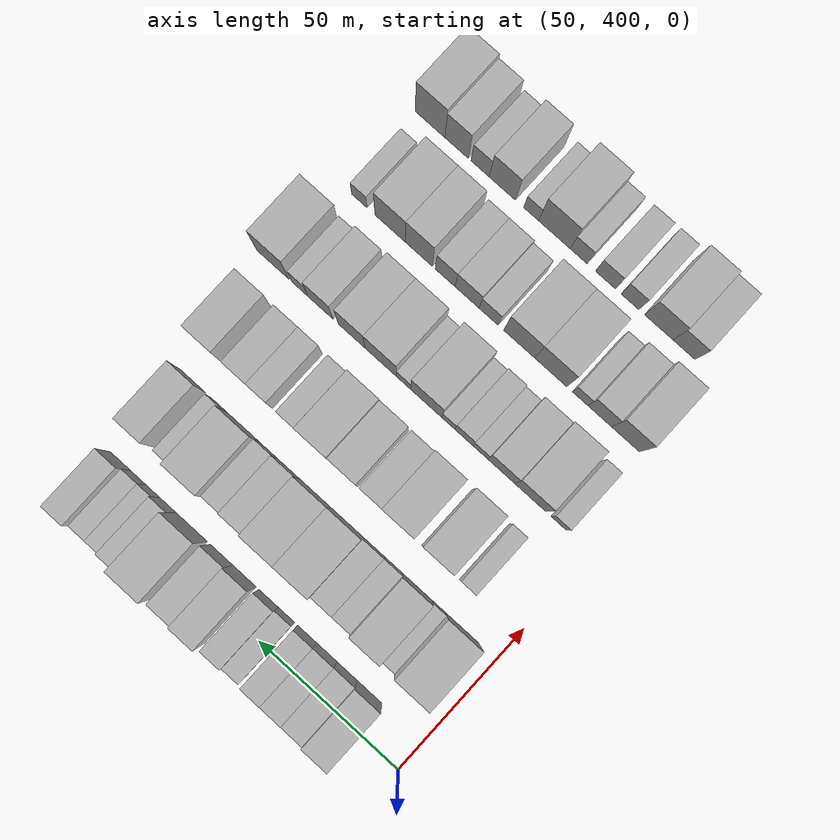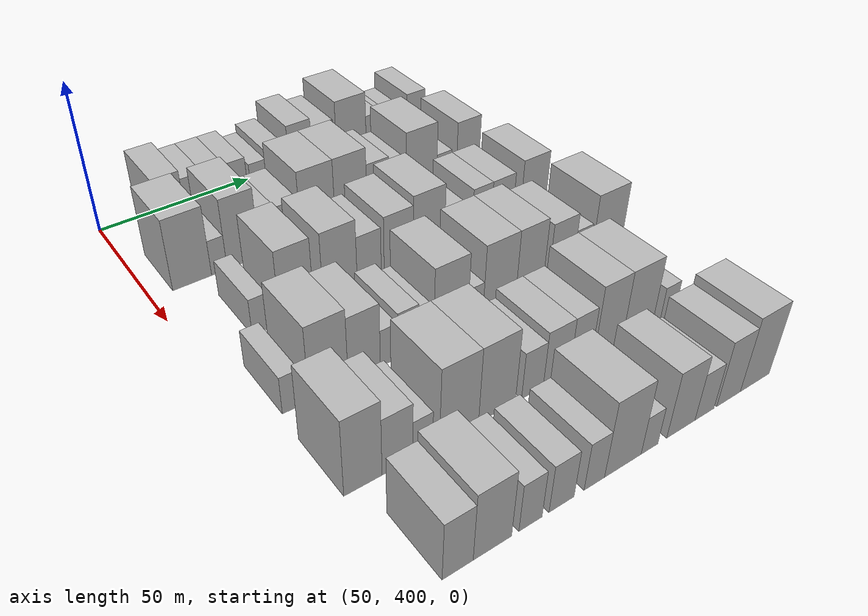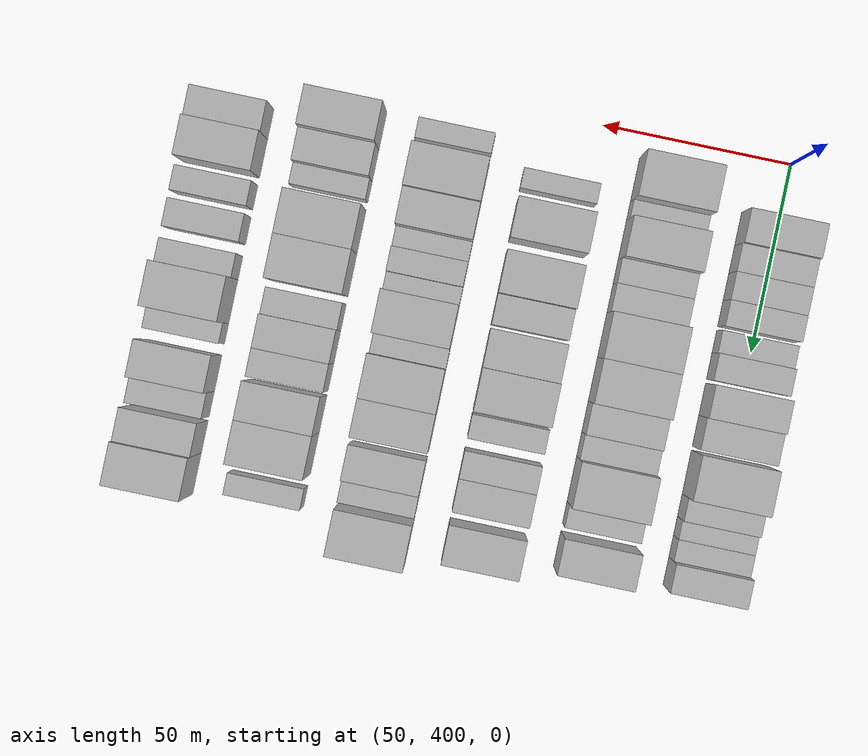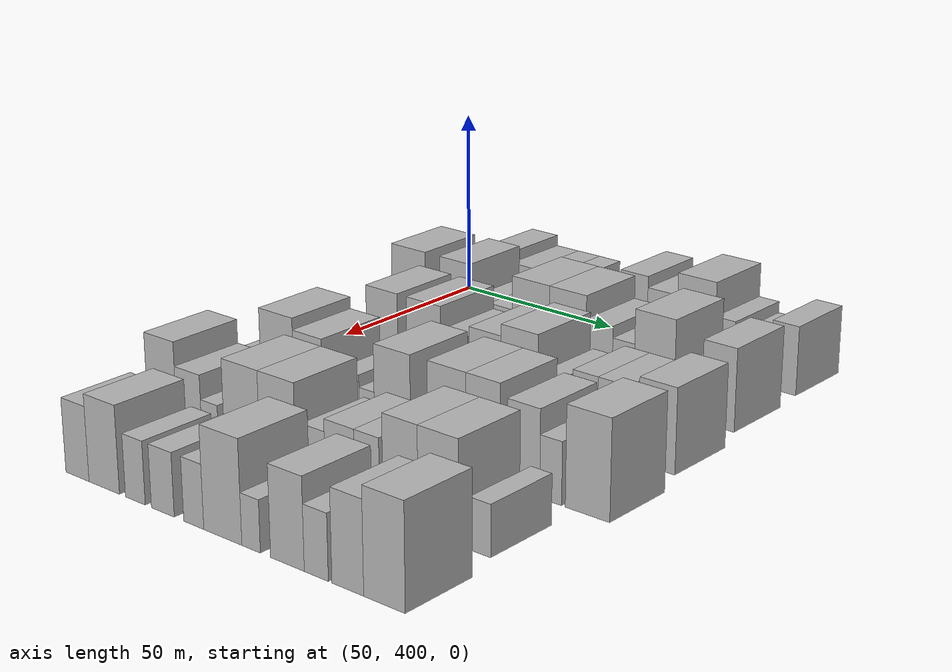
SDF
<sdf version="1.6">
 <world name="default">
  <model name="building_104">
   <static>1</static>
   <pose>50.0000 419.2654 0 0.000000 0.000000 0.000000</pose>
   <link name="link">
    <pose>0 0 9.00 0 0 0</pose>
    <collision name="collision"><geometry><box><size>20.0000 8.9128 18.0000</size></box></geometry></collision>
    <visual name="visual">
     <cast_shadows>0</cast_shadows>
     <geometry><box><size>20.0000 8.9128 18.0000</size></box></geometry>
     <material>
      <script>
       <uri>model://HANNAS_wall/materials/scripts</uri>
       <uri>model://HANNAS_wall/materials/textures</uri>
       <name>vrc/HANNAS_wall</name>
      </script>
     </material>
    </visual>
   </link>
  </model>
  <model name="building_105">
   <static>1</static>
   <pose>50.0000 427.3877 0 0.000000 0.000000 0.000000</pose>
   <link name="link">
    <pose>0 0 7.50 0 0 0</pose>
    <collision name="collision"><geometry><box><size>20.0000 7.3318 15.0000</size></box></geometry></collision>
    <visual name="visual">
     <cast_shadows>0</cast_shadows>
     <geometry><box><size>20.0000 7.3318 15.0000</size></box></geometry>
     <material>
      <script>
       <uri>model://HANNAS_wall/materials/scripts</uri>
       <uri>model://HANNAS_wall/materials/textures</uri>
       <name>vrc/HANNAS_wall</name>
      </script>
     </material>
    </visual>
   </link>
  </model>
  <model name="building_106">
   <static>1</static>
   <pose>50.0000 434.7126 0 0.000000 0.000000 0.000000</pose>
   <link name="link">
    <pose>0 0 7.50 0 0 0</pose>
    <collision name="collision"><geometry><box><size>20.0000 7.3180 15.0000</size></box></geometry></collision>
    <visual name="visual">
     <cast_shadows>0</cast_shadows>
     <geometry><box><size>20.0000 7.3180 15.0000</size></box></geometry>
     <material>
      <script>
       <uri>model://HANNAS_wall/materials/scripts</uri>
       <uri>model://HANNAS_wall/materials/textures</uri>
       <name>vrc/HANNAS_wall</name>
      </script>
     </material>
    </visual>
   </link>
  </model>
  <model name="building_107">
   <static>1</static>
   <pose>50.0000 441.8050 0 0.000000 0.000000 0.000000</pose>
   <link name="link">
    <pose>0 0 7.50 0 0 0</pose>
    <collision name="collision"><geometry><box><size>20.0000 6.8667 15.0000</size></box></geometry></collision>
    <visual name="visual">
     <cast_shadows>0</cast_shadows>
     <geometry><box><size>20.0000 6.8667 15.0000</size></box></geometry>
     <material>
      <script>
       <uri>model://HANNAS_wall/materials/scripts</uri>
       <uri>model://HANNAS_wall/materials/textures</uri>
       <name>vrc/HANNAS_wall</name>
      </script>
     </material>
    </visual>
   </link>
  </model>
  <model name="building_108">
   <static>1</static>
   <pose>50.0000 449.2167 0 0.000000 0.000000 0.000000</pose>
   <link name="link">
    <pose>0 0 6.00 0 0 0</pose>
    <collision name="collision"><geometry><box><size>20.0000 5.9567 12.0000</size></box></geometry></collision>
    <visual name="visual">
     <cast_shadows>0</cast_shadows>
     <geometry><box><size>20.0000 5.9567 12.0000</size></box></geometry>
     <material>
      <script>
       <uri>model://HANNAS_wall/materials/scripts</uri>
       <uri>model://HANNAS_wall/materials/textures</uri>
       <name>vrc/HANNAS_wall</name>
      </script>
     </material>
    </visual>
   </link>
  </model>
  <model name="building_109">
   <static>1</static>
   <pose>50.0000 455.7350 0 0.000000 0.000000 0.000000</pose>
   <link name="link">
    <pose>0 0 7.50 0 0 0</pose>
    <collision name="collision"><geometry><box><size>20.0000 7.0798 15.0000</size></box></geometry></collision>
    <visual name="visual">
     <cast_shadows>0</cast_shadows>
     <geometry><box><size>20.0000 7.0798 15.0000</size></box></geometry>
     <material>
      <script>
       <uri>model://HANNAS_wall/materials/scripts</uri>
       <uri>model://HANNAS_wall/materials/textures</uri>
       <name>vrc/HANNAS_wall</name>
      </script>
     </material>
    </visual>
   </link>
  </model>
  <model name="building_110">
   <static>1</static>
   <pose>50.0000 464.5744 0 0.000000 0.000000 0.000000</pose>
   <link name="link">
    <pose>0 0 10.50 0 0 0</pose>
    <collision name="collision"><geometry><box><size>20.0000 8.5990 21.0000</size></box></geometry></collision>
    <visual name="visual">
     <cast_shadows>0</cast_shadows>
     <geometry><box><size>20.0000 8.5990 21.0000</size></box></geometry>
     <material>
      <script>
       <uri>model://HANNAS_wall/materials/scripts</uri>
       <uri>model://HANNAS_wall/materials/textures</uri>
       <name>vrc/HANNAS_wall</name>
      </script>
     </material>
    </visual>
   </link>
  </model>
  <model name="building_111">
   <static>1</static>
   <pose>50.0000 473.0057 0 0.000000 0.000000 0.000000</pose>
   <link name="link">
    <pose>0 0 9.00 0 0 0</pose>
    <collision name="collision"><geometry><box><size>20.0000 8.2637 18.0000</size></box></geometry></collision>
    <visual name="visual">
     <cast_shadows>0</cast_shadows>
     <geometry><box><size>20.0000 8.2637 18.0000</size></box></geometry>
     <material>
      <script>
       <uri>model://HANNAS_wall/materials/scripts</uri>
       <uri>model://HANNAS_wall/materials/textures</uri>
       <name>vrc/HANNAS_wall</name>
      </script>
     </material>
    </visual>
   </link>
  </model>
  <model name="building_112">
   <static>1</static>
   <pose>50.0000 483.9564 0 0.000000 0.000000 0.000000</pose>
   <link name="link">
    <pose>0 0 12.00 0 0 0</pose>
    <collision name="collision"><geometry><box><size>20.0000 11.6377 24.0000</size></box></geometry></collision>
    <visual name="visual">
     <cast_shadows>0</cast_shadows>
     <geometry><box><size>20.0000 11.6377 24.0000</size></box></geometry>
     <material>
      <script>
       <uri>model://HANNAS_wall/materials/scripts</uri>
       <uri>model://HANNAS_wall/materials/textures</uri>
       <name>vrc/HANNAS_wall</name>
      </script>
     </material>
    </visual>
   </link>
  </model>
  <model name="building_113">
   <static>1</static>
   <pose>50.0000 492.7792 0 0.000000 0.000000 0.000000</pose>
   <link name="link">
    <pose>0 0 7.50 0 0 0</pose>
    <collision name="collision"><geometry><box><size>20.0000 6.0079 15.0000</size></box></geometry></collision>
    <visual name="visual">
     <cast_shadows>0</cast_shadows>
     <geometry><box><size>20.0000 6.0079 15.0000</size></box></geometry>
     <material>
      <script>
       <uri>model://HANNAS_wall/materials/scripts</uri>
       <uri>model://HANNAS_wall/materials/textures</uri>
       <name>vrc/HANNAS_wall</name>
      </script>
     </material>
    </visual>
   </link>
  </model>
  <model name="building_114">
   <static>1</static>
   <pose>50.0000 498.2769 0 0.000000 0.000000 0.000000</pose>
   <link name="link">
    <pose>0 0 6.00 0 0 0</pose>
    <collision name="collision"><geometry><box><size>20.0000 4.9874 12.0000</size></box></geometry></collision>
    <visual name="visual">
     <cast_shadows>0</cast_shadows>
     <geometry><box><size>20.0000 4.9874 12.0000</size></box></geometry>
     <material>
      <script>
       <uri>model://HANNAS_wall/materials/scripts</uri>
       <uri>model://HANNAS_wall/materials/textures</uri>
       <name>vrc/HANNAS_wall</name>
      </script>
     </material>
    </visual>
   </link>
  </model>
  <model name="building_115">
   <static>1</static>
   <pose>50.0000 503.6442 0 0.000000 0.000000 0.000000</pose>
   <link name="link">
    <pose>0 0 6.00 0 0 0</pose>
    <collision name="collision"><geometry><box><size>20.0000 5.7471 12.0000</size></box></geometry></collision>
    <visual name="visual">
     <cast_shadows>0</cast_shadows>
     <geometry><box><size>20.0000 5.7471 12.0000</size></box></geometry>
     <material>
      <script>
       <uri>model://HANNAS_wall/materials/scripts</uri>
       <uri>model://HANNAS_wall/materials/textures</uri>
       <name>vrc/HANNAS_wall</name>
      </script>
     </material>
    </visual>
   </link>
  </model>
  <model name="building_116">
   <static>1</static>
   <pose>50.0000 510.2518 0 0.000000 0.000000 0.000000</pose>
   <link name="link">
    <pose>0 0 9.00 0 0 0</pose>
    <collision name="collision"><geometry><box><size>20.0000 7.4681 18.0000</size></box></geometry></collision>
    <visual name="visual">
     <cast_shadows>0</cast_shadows>
     <geometry><box><size>20.0000 7.4681 18.0000</size></box></geometry>
     <material>
      <script>
       <uri>model://HANNAS_wall/materials/scripts</uri>
       <uri>model://HANNAS_wall/materials/textures</uri>
       <name>vrc/HANNAS_wall</name>
      </script>
     </material>
    </visual>
   </link>
  </model>
  <model name="building_226">
   <static>1</static>
   <pose>79.0000 412.3928 0 0.000000 0.000000 0.000000</pose>
   <link name="link">
    <pose>0 0 12.00 0 0 0</pose>
    <collision name="collision"><geometry><box><size>20.0000 11.9029 24.0000</size></box></geometry></collision>
    <visual name="visual">
     <cast_shadows>0</cast_shadows>
     <geometry><box><size>20.0000 11.9029 24.0000</size></box></geometry>
     <material>
      <script>
       <uri>model://HANNAS_wall/materials/scripts</uri>
       <uri>model://HANNAS_wall/materials/textures</uri>
       <name>vrc/HANNAS_wall</name>
      </script>
     </material>
    </visual>
   </link>
  </model>
  <model name="building_227">
   <static>1</static>
   <pose>79.0000 420.8085 0 0.000000 0.000000 0.000000</pose>
   <link name="link">
    <pose>0 0 6.00 0 0 0</pose>
    <collision name="collision"><geometry><box><size>20.0000 4.9286 12.0000</size></box></geometry></collision>
    <visual name="visual">
     <cast_shadows>0</cast_shadows>
     <geometry><box><size>20.0000 4.9286 12.0000</size></box></geometry>
     <material>
      <script>
       <uri>model://HANNAS_wall/materials/scripts</uri>
       <uri>model://HANNAS_wall/materials/textures</uri>
       <name>vrc/HANNAS_wall</name>
      </script>
     </material>
    </visual>
   </link>
  </model>
  <model name="building_228">
   <static>1</static>
   <pose>79.0000 428.4745 0 0.000000 0.000000 0.000000</pose>
   <link name="link">
    <pose>0 0 12.00 0 0 0</pose>
    <collision name="collision"><geometry><box><size>20.0000 10.4033 24.0000</size></box></geometry></collision>
    <visual name="visual">
     <cast_shadows>0</cast_shadows>
     <geometry><box><size>20.0000 10.4033 24.0000</size></box></geometry>
     <material>
      <script>
       <uri>model://HANNAS_wall/materials/scripts</uri>
       <uri>model://HANNAS_wall/materials/textures</uri>
       <name>vrc/HANNAS_wall</name>
      </script>
     </material>
    </visual>
   </link>
  </model>
  <model name="building_229">
   <static>1</static>
   <pose>79.0000 436.9252 0 0.000000 0.000000 0.000000</pose>
   <link name="link">
    <pose>0 0 7.50 0 0 0</pose>
    <collision name="collision"><geometry><box><size>20.0000 6.4983 15.0000</size></box></geometry></collision>
    <visual name="visual">
     <cast_shadows>0</cast_shadows>
     <geometry><box><size>20.0000 6.4983 15.0000</size></box></geometry>
     <material>
      <script>
       <uri>model://HANNAS_wall/materials/scripts</uri>
       <uri>model://HANNAS_wall/materials/textures</uri>
       <name>vrc/HANNAS_wall</name>
      </script>
     </material>
    </visual>
   </link>
  </model>
  <model name="building_230">
   <static>1</static>
   <pose>79.0000 443.9107 0 0.000000 0.000000 0.000000</pose>
   <link name="link">
    <pose>0 0 7.50 0 0 0</pose>
    <collision name="collision"><geometry><box><size>20.0000 7.4726 15.0000</size></box></geometry></collision>
    <visual name="visual">
     <cast_shadows>0</cast_shadows>
     <geometry><box><size>20.0000 7.4726 15.0000</size></box></geometry>
     <material>
      <script>
       <uri>model://HANNAS_wall/materials/scripts</uri>
       <uri>model://HANNAS_wall/materials/textures</uri>
       <name>vrc/HANNAS_wall</name>
      </script>
     </material>
    </visual>
   </link>
  </model>
  <model name="building_231">
   <static>1</static>
   <pose>79.0000 453.6437 0 0.000000 0.000000 0.000000</pose>
   <link name="link">
    <pose>0 0 12.00 0 0 0</pose>
    <collision name="collision"><geometry><box><size>20.0000 11.9935 24.0000</size></box></geometry></collision>
    <visual name="visual">
     <cast_shadows>0</cast_shadows>
     <geometry><box><size>20.0000 11.9935 24.0000</size></box></geometry>
     <material>
      <script>
       <uri>model://HANNAS_wall/materials/scripts</uri>
       <uri>model://HANNAS_wall/materials/textures</uri>
       <name>vrc/HANNAS_wall</name>
      </script>
     </material>
    </visual>
   </link>
  </model>
  <model name="building_232">
   <static>1</static>
   <pose>79.0000 465.4151 0 0.000000 0.000000 0.000000</pose>
   <link name="link">
    <pose>0 0 12.00 0 0 0</pose>
    <collision name="collision"><geometry><box><size>20.0000 11.5492 24.0000</size></box></geometry></collision>
    <visual name="visual">
     <cast_shadows>0</cast_shadows>
     <geometry><box><size>20.0000 11.5492 24.0000</size></box></geometry>
     <material>
      <script>
       <uri>model://HANNAS_wall/materials/scripts</uri>
       <uri>model://HANNAS_wall/materials/textures</uri>
       <name>vrc/HANNAS_wall</name>
      </script>
     </material>
    </visual>
   </link>
  </model>
  <model name="building_233">
   <static>1</static>
   <pose>79.0000 475.2876 0 0.000000 0.000000 0.000000</pose>
   <link name="link">
    <pose>0 0 9.00 0 0 0</pose>
    <collision name="collision"><geometry><box><size>20.0000 8.1958 18.0000</size></box></geometry></collision>
    <visual name="visual">
     <cast_shadows>0</cast_shadows>
     <geometry><box><size>20.0000 8.1958 18.0000</size></box></geometry>
     <material>
      <script>
       <uri>model://HANNAS_wall/materials/scripts</uri>
       <uri>model://HANNAS_wall/materials/textures</uri>
       <name>vrc/HANNAS_wall</name>
      </script>
     </material>
    </visual>
   </link>
  </model>
  <model name="building_234">
   <static>1</static>
   <pose>79.0000 482.6679 0 0.000000 0.000000 0.000000</pose>
   <link name="link">
    <pose>0 0 7.50 0 0 0</pose>
    <collision name="collision"><geometry><box><size>20.0000 6.5649 15.0000</size></box></geometry></collision>
    <visual name="visual">
     <cast_shadows>0</cast_shadows>
     <geometry><box><size>20.0000 6.5649 15.0000</size></box></geometry>
     <material>
      <script>
       <uri>model://HANNAS_wall/materials/scripts</uri>
       <uri>model://HANNAS_wall/materials/textures</uri>
       <name>vrc/HANNAS_wall</name>
      </script>
     </material>
    </visual>
   </link>
  </model>
  <model name="building_235">
   <static>1</static>
   <pose>79.0000 491.9033 0 0.000000 0.000000 0.000000</pose>
   <link name="link">
    <pose>0 0 12.00 0 0 0</pose>
    <collision name="collision"><geometry><box><size>20.0000 11.9057 24.0000</size></box></geometry></collision>
    <visual name="visual">
     <cast_shadows>0</cast_shadows>
     <geometry><box><size>20.0000 11.9057 24.0000</size></box></geometry>
     <material>
      <script>
       <uri>model://HANNAS_wall/materials/scripts</uri>
       <uri>model://HANNAS_wall/materials/textures</uri>
       <name>vrc/HANNAS_wall</name>
      </script>
     </material>
    </visual>
   </link>
  </model>
  <model name="building_236">
   <static>1</static>
   <pose>79.0000 500.8260 0 0.000000 0.000000 0.000000</pose>
   <link name="link">
    <pose>0 0 6.00 0 0 0</pose>
    <collision name="collision"><geometry><box><size>20.0000 5.9397 12.0000</size></box></geometry></collision>
    <visual name="visual">
     <cast_shadows>0</cast_shadows>
     <geometry><box><size>20.0000 5.9397 12.0000</size></box></geometry>
     <material>
      <script>
       <uri>model://HANNAS_wall/materials/scripts</uri>
       <uri>model://HANNAS_wall/materials/textures</uri>
       <name>vrc/HANNAS_wall</name>
      </script>
     </material>
    </visual>
   </link>
  </model>
  <model name="building_237">
   <static>1</static>
   <pose>79.0000 510.4915 0 0.000000 0.000000 0.000000</pose>
   <link name="link">
    <pose>0 0 10.50 0 0 0</pose>
    <collision name="collision"><geometry><box><size>20.0000 9.3913 21.0000</size></box></geometry></collision>
    <visual name="visual">
     <cast_shadows>0</cast_shadows>
     <geometry><box><size>20.0000 9.3913 21.0000</size></box></geometry>
     <material>
      <script>
       <uri>model://HANNAS_wall/materials/scripts</uri>
       <uri>model://HANNAS_wall/materials/textures</uri>
       <name>vrc/HANNAS_wall</name>
      </script>
     </material>
    </visual>
   </link>
  </model>
  <model name="building_346">
   <static>1</static>
   <pose>108.0000 418.8184 0 0.000000 0.000000 0.000000</pose>
   <link name="link">
    <pose>0 0 6.00 0 0 0</pose>
    <collision name="collision"><geometry><box><size>20.0000 5.3253 12.0000</size></box></geometry></collision>
    <visual name="visual">
     <cast_shadows>0</cast_shadows>
     <geometry><box><size>20.0000 5.3253 12.0000</size></box></geometry>
     <material>
      <script>
       <uri>model://HANNAS_wall/materials/scripts</uri>
       <uri>model://HANNAS_wall/materials/textures</uri>
       <name>vrc/HANNAS_wall</name>
      </script>
     </material>
    </visual>
   </link>
  </model>
  <model name="building_347">
   <static>1</static>
   <pose>108.0000 429.7435 0 0.000000 0.000000 0.000000</pose>
   <link name="link">
    <pose>0 0 12.00 0 0 0</pose>
    <collision name="collision"><geometry><box><size>20.0000 10.5248 24.0000</size></box></geometry></collision>
    <visual name="visual">
     <cast_shadows>0</cast_shadows>
     <geometry><box><size>20.0000 10.5248 24.0000</size></box></geometry>
     <material>
      <script>
       <uri>model://HANNAS_wall/materials/scripts</uri>
       <uri>model://HANNAS_wall/materials/textures</uri>
       <name>vrc/HANNAS_wall</name>
      </script>
     </material>
    </visual>
   </link>
  </model>
  <model name="building_348">
   <static>1</static>
   <pose>108.0000 443.5469 0 0.000000 0.000000 0.000000</pose>
   <link name="link">
    <pose>0 0 12.00 0 0 0</pose>
    <collision name="collision"><geometry><box><size>20.0000 11.0821 24.0000</size></box></geometry></collision>
    <visual name="visual">
     <cast_shadows>0</cast_shadows>
     <geometry><box><size>20.0000 11.0821 24.0000</size></box></geometry>
     <material>
      <script>
       <uri>model://HANNAS_wall/materials/scripts</uri>
       <uri>model://HANNAS_wall/materials/textures</uri>
       <name>vrc/HANNAS_wall</name>
      </script>
     </material>
    </visual>
   </link>
  </model>
  <model name="building_349">
   <static>1</static>
   <pose>108.0000 453.0960 0 0.000000 0.000000 0.000000</pose>
   <link name="link">
    <pose>0 0 9.00 0 0 0</pose>
    <collision name="collision"><geometry><box><size>20.0000 8.0160 18.0000</size></box></geometry></collision>
    <visual name="visual">
     <cast_shadows>0</cast_shadows>
     <geometry><box><size>20.0000 8.0160 18.0000</size></box></geometry>
     <material>
      <script>
       <uri>model://HANNAS_wall/materials/scripts</uri>
       <uri>model://HANNAS_wall/materials/textures</uri>
       <name>vrc/HANNAS_wall</name>
      </script>
     </material>
    </visual>
   </link>
  </model>
  <model name="building_350">
   <static>1</static>
   <pose>108.0000 463.1123 0 0.000000 0.000000 0.000000</pose>
   <link name="link">
    <pose>0 0 10.50 0 0 0</pose>
    <collision name="collision"><geometry><box><size>20.0000 10.0166 21.0000</size></box></geometry></collision>
    <visual name="visual">
     <cast_shadows>0</cast_shadows>
     <geometry><box><size>20.0000 10.0166 21.0000</size></box></geometry>
     <material>
      <script>
       <uri>model://HANNAS_wall/materials/scripts</uri>
       <uri>model://HANNAS_wall/materials/textures</uri>
       <name>vrc/HANNAS_wall</name>
      </script>
     </material>
    </visual>
   </link>
  </model>
  <model name="building_351">
   <static>1</static>
   <pose>108.0000 473.6865 0 0.000000 0.000000 0.000000</pose>
   <link name="link">
    <pose>0 0 12.00 0 0 0</pose>
    <collision name="collision"><geometry><box><size>20.0000 11.1318 24.0000</size></box></geometry></collision>
    <visual name="visual">
     <cast_shadows>0</cast_shadows>
     <geometry><box><size>20.0000 11.1318 24.0000</size></box></geometry>
     <material>
      <script>
       <uri>model://HANNAS_wall/materials/scripts</uri>
       <uri>model://HANNAS_wall/materials/textures</uri>
       <name>vrc/HANNAS_wall</name>
      </script>
     </material>
    </visual>
   </link>
  </model>
  <model name="building_352">
   <static>1</static>
   <pose>108.0000 483.3991 0 0.000000 0.000000 0.000000</pose>
   <link name="link">
    <pose>0 0 7.50 0 0 0</pose>
    <collision name="collision"><geometry><box><size>20.0000 6.2934 15.0000</size></box></geometry></collision>
    <visual name="visual">
     <cast_shadows>0</cast_shadows>
     <geometry><box><size>20.0000 6.2934 15.0000</size></box></geometry>
     <material>
      <script>
       <uri>model://HANNAS_wall/materials/scripts</uri>
       <uri>model://HANNAS_wall/materials/textures</uri>
       <name>vrc/HANNAS_wall</name>
      </script>
     </material>
    </visual>
   </link>
  </model>
  <model name="building_353">
   <static>1</static>
   <pose>108.0000 493.1645 0 0.000000 0.000000 0.000000</pose>
   <link name="link">
    <pose>0 0 9.00 0 0 0</pose>
    <collision name="collision"><geometry><box><size>20.0000 7.2375 18.0000</size></box></geometry></collision>
    <visual name="visual">
     <cast_shadows>0</cast_shadows>
     <geometry><box><size>20.0000 7.2375 18.0000</size></box></geometry>
     <material>
      <script>
       <uri>model://HANNAS_wall/materials/scripts</uri>
       <uri>model://HANNAS_wall/materials/textures</uri>
       <name>vrc/HANNAS_wall</name>
      </script>
     </material>
    </visual>
   </link>
  </model>
  <model name="building_354">
   <static>1</static>
   <pose>108.0000 501.0811 0 0.000000 0.000000 0.000000</pose>
   <link name="link">
    <pose>0 0 9.00 0 0 0</pose>
    <collision name="collision"><geometry><box><size>20.0000 8.5957 18.0000</size></box></geometry></collision>
    <visual name="visual">
     <cast_shadows>0</cast_shadows>
     <geometry><box><size>20.0000 8.5957 18.0000</size></box></geometry>
     <material>
      <script>
       <uri>model://HANNAS_wall/materials/scripts</uri>
       <uri>model://HANNAS_wall/materials/textures</uri>
       <name>vrc/HANNAS_wall</name>
      </script>
     </material>
    </visual>
   </link>
  </model>
  <model name="building_355">
   <static>1</static>
   <pose>108.0000 513.5099 0 0.000000 0.000000 0.000000</pose>
   <link name="link">
    <pose>0 0 10.50 0 0 0</pose>
    <collision name="collision"><geometry><box><size>20.0000 10.2618 21.0000</size></box></geometry></collision>
    <visual name="visual">
     <cast_shadows>0</cast_shadows>
     <geometry><box><size>20.0000 10.2618 21.0000</size></box></geometry>
     <material>
      <script>
       <uri>model://HANNAS_wall/materials/scripts</uri>
       <uri>model://HANNAS_wall/materials/textures</uri>
       <name>vrc/HANNAS_wall</name>
      </script>
     </material>
    </visual>
   </link>
  </model>
  <model name="building_457">
   <static>1</static>
   <pose>137.0000 411.8241 0 0.000000 0.000000 0.000000</pose>
   <link name="link">
    <pose>0 0 6.00 0 0 0</pose>
    <collision name="collision"><geometry><box><size>20.0000 5.3964 12.0000</size></box></geometry></collision>
    <visual name="visual">
     <cast_shadows>0</cast_shadows>
     <geometry><box><size>20.0000 5.3964 12.0000</size></box></geometry>
     <material>
      <script>
       <uri>model://HANNAS_wall/materials/scripts</uri>
       <uri>model://HANNAS_wall/materials/textures</uri>
       <name>vrc/HANNAS_wall</name>
      </script>
     </material>
    </visual>
   </link>
  </model>
  <model name="building_458">
   <static>1</static>
   <pose>137.0000 422.1693 0 0.000000 0.000000 0.000000</pose>
   <link name="link">
    <pose>0 0 12.00 0 0 0</pose>
    <collision name="collision"><geometry><box><size>20.0000 11.2940 24.0000</size></box></geometry></collision>
    <visual name="visual">
     <cast_shadows>0</cast_shadows>
     <geometry><box><size>20.0000 11.2940 24.0000</size></box></geometry>
     <material>
      <script>
       <uri>model://HANNAS_wall/materials/scripts</uri>
       <uri>model://HANNAS_wall/materials/textures</uri>
       <name>vrc/HANNAS_wall</name>
      </script>
     </material>
    </visual>
   </link>
  </model>
  <model name="building_459">
   <static>1</static>
   <pose>137.0000 432.6266 0 0.000000 0.000000 0.000000</pose>
   <link name="link">
    <pose>0 0 10.50 0 0 0</pose>
    <collision name="collision"><geometry><box><size>20.0000 9.6206 21.0000</size></box></geometry></collision>
    <visual name="visual">
     <cast_shadows>0</cast_shadows>
     <geometry><box><size>20.0000 9.6206 21.0000</size></box></geometry>
     <material>
      <script>
       <uri>model://HANNAS_wall/materials/scripts</uri>
       <uri>model://HANNAS_wall/materials/textures</uri>
       <name>vrc/HANNAS_wall</name>
      </script>
     </material>
    </visual>
   </link>
  </model>
  <model name="building_460">
   <static>1</static>
   <pose>137.0000 440.1208 0 0.000000 0.000000 0.000000</pose>
   <link name="link">
    <pose>0 0 6.00 0 0 0</pose>
    <collision name="collision"><geometry><box><size>20.0000 5.3678 12.0000</size></box></geometry></collision>
    <visual name="visual">
     <cast_shadows>0</cast_shadows>
     <geometry><box><size>20.0000 5.3678 12.0000</size></box></geometry>
     <material>
      <script>
       <uri>model://HANNAS_wall/materials/scripts</uri>
       <uri>model://HANNAS_wall/materials/textures</uri>
       <name>vrc/HANNAS_wall</name>
      </script>
     </material>
    </visual>
   </link>
  </model>
  <model name="building_461">
   <static>1</static>
   <pose>137.0000 446.0675 0 0.000000 0.000000 0.000000</pose>
   <link name="link">
    <pose>0 0 7.50 0 0 0</pose>
    <collision name="collision"><geometry><box><size>20.0000 6.5257 15.0000</size></box></geometry></collision>
    <visual name="visual">
     <cast_shadows>0</cast_shadows>
     <geometry><box><size>20.0000 6.5257 15.0000</size></box></geometry>
     <material>
      <script>
       <uri>model://HANNAS_wall/materials/scripts</uri>
       <uri>model://HANNAS_wall/materials/textures</uri>
       <name>vrc/HANNAS_wall</name>
      </script>
     </material>
    </visual>
   </link>
  </model>
  <model name="building_462">
   <static>1</static>
   <pose>137.0000 451.7450 0 0.000000 0.000000 0.000000</pose>
   <link name="link">
    <pose>0 0 6.00 0 0 0</pose>
    <collision name="collision"><geometry><box><size>20.0000 4.8292 12.0000</size></box></geometry></collision>
    <visual name="visual">
     <cast_shadows>0</cast_shadows>
     <geometry><box><size>20.0000 4.8292 12.0000</size></box></geometry>
     <material>
      <script>
       <uri>model://HANNAS_wall/materials/scripts</uri>
       <uri>model://HANNAS_wall/materials/textures</uri>
       <name>vrc/HANNAS_wall</name>
      </script>
     </material>
    </visual>
   </link>
  </model>
  <model name="building_463">
   <static>1</static>
   <pose>137.0000 459.7898 0 0.000000 0.000000 0.000000</pose>
   <link name="link">
    <pose>0 0 12.00 0 0 0</pose>
    <collision name="collision"><geometry><box><size>20.0000 11.2606 24.0000</size></box></geometry></collision>
    <visual name="visual">
     <cast_shadows>0</cast_shadows>
     <geometry><box><size>20.0000 11.2606 24.0000</size></box></geometry>
     <material>
      <script>
       <uri>model://HANNAS_wall/materials/scripts</uri>
       <uri>model://HANNAS_wall/materials/textures</uri>
       <name>vrc/HANNAS_wall</name>
      </script>
     </material>
    </visual>
   </link>
  </model>
  <model name="building_464">
   <static>1</static>
   <pose>137.0000 468.0094 0 0.000000 0.000000 0.000000</pose>
   <link name="link">
    <pose>0 0 6.00 0 0 0</pose>
    <collision name="collision"><geometry><box><size>20.0000 5.1786 12.0000</size></box></geometry></collision>
    <visual name="visual">
     <cast_shadows>0</cast_shadows>
     <geometry><box><size>20.0000 5.1786 12.0000</size></box></geometry>
     <material>
      <script>
       <uri>model://HANNAS_wall/materials/scripts</uri>
       <uri>model://HANNAS_wall/materials/textures</uri>
       <name>vrc/HANNAS_wall</name>
      </script>
     </material>
    </visual>
   </link>
  </model>
  <model name="building_465">
   <static>1</static>
   <pose>137.0000 476.3225 0 0.000000 0.000000 0.000000</pose>
   <link name="link">
    <pose>0 0 12.00 0 0 0</pose>
    <collision name="collision"><geometry><box><size>20.0000 11.4476 24.0000</size></box></geometry></collision>
    <visual name="visual">
     <cast_shadows>0</cast_shadows>
     <geometry><box><size>20.0000 11.4476 24.0000</size></box></geometry>
     <material>
      <script>
       <uri>model://HANNAS_wall/materials/scripts</uri>
       <uri>model://HANNAS_wall/materials/textures</uri>
       <name>vrc/HANNAS_wall</name>
      </script>
     </material>
    </visual>
   </link>
  </model>
  <model name="building_466">
   <static>1</static>
   <pose>137.0000 487.0136 0 0.000000 0.000000 0.000000</pose>
   <link name="link">
    <pose>0 0 12.00 0 0 0</pose>
    <collision name="collision"><geometry><box><size>20.0000 9.9348 24.0000</size></box></geometry></collision>
    <visual name="visual">
     <cast_shadows>0</cast_shadows>
     <geometry><box><size>20.0000 9.9348 24.0000</size></box></geometry>
     <material>
      <script>
       <uri>model://HANNAS_wall/materials/scripts</uri>
       <uri>model://HANNAS_wall/materials/textures</uri>
       <name>vrc/HANNAS_wall</name>
      </script>
     </material>
    </visual>
   </link>
  </model>
  <model name="building_467">
   <static>1</static>
   <pose>137.0000 498.5995 0 0.000000 0.000000 0.000000</pose>
   <link name="link">
    <pose>0 0 10.50 0 0 0</pose>
    <collision name="collision"><geometry><box><size>20.0000 9.2369 21.0000</size></box></geometry></collision>
    <visual name="visual">
     <cast_shadows>0</cast_shadows>
     <geometry><box><size>20.0000 9.2369 21.0000</size></box></geometry>
     <material>
      <script>
       <uri>model://HANNAS_wall/materials/scripts</uri>
       <uri>model://HANNAS_wall/materials/textures</uri>
       <name>vrc/HANNAS_wall</name>
      </script>
     </material>
    </visual>
   </link>
  </model>
  <model name="building_468">
   <static>1</static>
   <pose>137.0000 506.2468 0 0.000000 0.000000 0.000000</pose>
   <link name="link">
    <pose>0 0 7.50 0 0 0</pose>
    <collision name="collision"><geometry><box><size>20.0000 6.0576 15.0000</size></box></geometry></collision>
    <visual name="visual">
     <cast_shadows>0</cast_shadows>
     <geometry><box><size>20.0000 6.0576 15.0000</size></box></geometry>
     <material>
      <script>
       <uri>model://HANNAS_wall/materials/scripts</uri>
       <uri>model://HANNAS_wall/materials/textures</uri>
       <name>vrc/HANNAS_wall</name>
      </script>
     </material>
    </visual>
   </link>
  </model>
  <model name="building_469">
   <static>1</static>
   <pose>137.0000 516.2578 0 0.000000 0.000000 0.000000</pose>
   <link name="link">
    <pose>0 0 12.00 0 0 0</pose>
    <collision name="collision"><geometry><box><size>20.0000 11.9645 24.0000</size></box></geometry></collision>
    <visual name="visual">
     <cast_shadows>0</cast_shadows>
     <geometry><box><size>20.0000 11.9645 24.0000</size></box></geometry>
     <material>
      <script>
       <uri>model://HANNAS_wall/materials/scripts</uri>
       <uri>model://HANNAS_wall/materials/textures</uri>
       <name>vrc/HANNAS_wall</name>
      </script>
     </material>
    </visual>
   </link>
  </model>
  <model name="building_575">
   <static>1</static>
   <pose>166.0000 413.4781 0 0.000000 0.000000 0.000000</pose>
   <link name="link">
    <pose>0 0 12.00 0 0 0</pose>
    <collision name="collision"><geometry><box><size>20.0000 10.1239 24.0000</size></box></geometry></collision>
    <visual name="visual">
     <cast_shadows>0</cast_shadows>
     <geometry><box><size>20.0000 10.1239 24.0000</size></box></geometry>
     <material>
      <script>
       <uri>model://HANNAS_wall/materials/scripts</uri>
       <uri>model://HANNAS_wall/materials/textures</uri>
       <name>vrc/HANNAS_wall</name>
      </script>
     </material>
    </visual>
   </link>
  </model>
  <model name="building_576">
   <static>1</static>
   <pose>166.0000 422.7741 0 0.000000 0.000000 0.000000</pose>
   <link name="link">
    <pose>0 0 9.00 0 0 0</pose>
    <collision name="collision"><geometry><box><size>20.0000 8.4679 18.0000</size></box></geometry></collision>
    <visual name="visual">
     <cast_shadows>0</cast_shadows>
     <geometry><box><size>20.0000 8.4679 18.0000</size></box></geometry>
     <material>
      <script>
       <uri>model://HANNAS_wall/materials/scripts</uri>
       <uri>model://HANNAS_wall/materials/textures</uri>
       <name>vrc/HANNAS_wall</name>
      </script>
     </material>
    </visual>
   </link>
  </model>
  <model name="building_577">
   <static>1</static>
   <pose>166.0000 429.8042 0 0.000000 0.000000 0.000000</pose>
   <link name="link">
    <pose>0 0 6.00 0 0 0</pose>
    <collision name="collision"><geometry><box><size>20.0000 5.5924 12.0000</size></box></geometry></collision>
    <visual name="visual">
     <cast_shadows>0</cast_shadows>
     <geometry><box><size>20.0000 5.5924 12.0000</size></box></geometry>
     <material>
      <script>
       <uri>model://HANNAS_wall/materials/scripts</uri>
       <uri>model://HANNAS_wall/materials/textures</uri>
       <name>vrc/HANNAS_wall</name>
      </script>
     </material>
    </visual>
   </link>
  </model>
  <model name="building_578">
   <static>1</static>
   <pose>166.0000 440.3954 0 0.000000 0.000000 0.000000</pose>
   <link name="link">
    <pose>0 0 12.00 0 0 0</pose>
    <collision name="collision"><geometry><box><size>20.0000 11.5898 24.0000</size></box></geometry></collision>
    <visual name="visual">
     <cast_shadows>0</cast_shadows>
     <geometry><box><size>20.0000 11.5898 24.0000</size></box></geometry>
     <material>
      <script>
       <uri>model://HANNAS_wall/materials/scripts</uri>
       <uri>model://HANNAS_wall/materials/textures</uri>
       <name>vrc/HANNAS_wall</name>
      </script>
     </material>
    </visual>
   </link>
  </model>
  <model name="building_579">
   <static>1</static>
   <pose>166.0000 451.8860 0 0.000000 0.000000 0.000000</pose>
   <link name="link">
    <pose>0 0 12.00 0 0 0</pose>
    <collision name="collision"><geometry><box><size>20.0000 11.3915 24.0000</size></box></geometry></collision>
    <visual name="visual">
     <cast_shadows>0</cast_shadows>
     <geometry><box><size>20.0000 11.3915 24.0000</size></box></geometry>
     <material>
      <script>
       <uri>model://HANNAS_wall/materials/scripts</uri>
       <uri>model://HANNAS_wall/materials/textures</uri>
       <name>vrc/HANNAS_wall</name>
      </script>
     </material>
    </visual>
   </link>
  </model>
  <model name="building_580">
   <static>1</static>
   <pose>166.0000 463.0812 0 0.000000 0.000000 0.000000</pose>
   <link name="link">
    <pose>0 0 7.50 0 0 0</pose>
    <collision name="collision"><geometry><box><size>20.0000 6.9989 15.0000</size></box></geometry></collision>
    <visual name="visual">
     <cast_shadows>0</cast_shadows>
     <geometry><box><size>20.0000 6.9989 15.0000</size></box></geometry>
     <material>
      <script>
       <uri>model://HANNAS_wall/materials/scripts</uri>
       <uri>model://HANNAS_wall/materials/textures</uri>
       <name>vrc/HANNAS_wall</name>
      </script>
     </material>
    </visual>
   </link>
  </model>
  <model name="building_581">
   <static>1</static>
   <pose>166.0000 470.9884 0 0.000000 0.000000 0.000000</pose>
   <link name="link">
    <pose>0 0 9.00 0 0 0</pose>
    <collision name="collision"><geometry><box><size>20.0000 8.8153 18.0000</size></box></geometry></collision>
    <visual name="visual">
     <cast_shadows>0</cast_shadows>
     <geometry><box><size>20.0000 8.8153 18.0000</size></box></geometry>
     <material>
      <script>
       <uri>model://HANNAS_wall/materials/scripts</uri>
       <uri>model://HANNAS_wall/materials/textures</uri>
       <name>vrc/HANNAS_wall</name>
      </script>
     </material>
    </visual>
   </link>
  </model>
  <model name="building_582">
   <static>1</static>
   <pose>166.0000 479.0576 0 0.000000 0.000000 0.000000</pose>
   <link name="link">
    <pose>0 0 9.00 0 0 0</pose>
    <collision name="collision"><geometry><box><size>20.0000 7.3230 18.0000</size></box></geometry></collision>
    <visual name="visual">
     <cast_shadows>0</cast_shadows>
     <geometry><box><size>20.0000 7.3230 18.0000</size></box></geometry>
     <material>
      <script>
       <uri>model://HANNAS_wall/materials/scripts</uri>
       <uri>model://HANNAS_wall/materials/textures</uri>
       <name>vrc/HANNAS_wall</name>
      </script>
     </material>
    </visual>
   </link>
  </model>
  <model name="building_583">
   <static>1</static>
   <pose>166.0000 488.7163 0 0.000000 0.000000 0.000000</pose>
   <link name="link">
    <pose>0 0 12.00 0 0 0</pose>
    <collision name="collision"><geometry><box><size>20.0000 9.9944 24.0000</size></box></geometry></collision>
    <visual name="visual">
     <cast_shadows>0</cast_shadows>
     <geometry><box><size>20.0000 9.9944 24.0000</size></box></geometry>
     <material>
      <script>
       <uri>model://HANNAS_wall/materials/scripts</uri>
       <uri>model://HANNAS_wall/materials/textures</uri>
       <name>vrc/HANNAS_wall</name>
      </script>
     </material>
    </visual>
   </link>
  </model>
  <model name="building_584">
   <static>1</static>
   <pose>166.0000 499.3196 0 0.000000 0.000000 0.000000</pose>
   <link name="link">
    <pose>0 0 12.00 0 0 0</pose>
    <collision name="collision"><geometry><box><size>20.0000 11.2123 24.0000</size></box></geometry></collision>
    <visual name="visual">
     <cast_shadows>0</cast_shadows>
     <geometry><box><size>20.0000 11.2123 24.0000</size></box></geometry>
     <material>
      <script>
       <uri>model://HANNAS_wall/materials/scripts</uri>
       <uri>model://HANNAS_wall/materials/textures</uri>
       <name>vrc/HANNAS_wall</name>
      </script>
     </material>
    </visual>
   </link>
  </model>
  <model name="building_585">
   <static>1</static>
   <pose>166.0000 510.7748 0 0.000000 0.000000 0.000000</pose>
   <link name="link">
    <pose>0 0 6.00 0 0 0</pose>
    <collision name="collision"><geometry><box><size>20.0000 5.6980 12.0000</size></box></geometry></collision>
    <visual name="visual">
     <cast_shadows>0</cast_shadows>
     <geometry><box><size>20.0000 5.6980 12.0000</size></box></geometry>
     <material>
      <script>
       <uri>model://HANNAS_wall/materials/scripts</uri>
       <uri>model://HANNAS_wall/materials/textures</uri>
       <name>vrc/HANNAS_wall</name>
      </script>
     </material>
    </visual>
   </link>
  </model>
  <model name="building_687">
   <static>1</static>
   <pose>195.0000 417.7562 0 0.000000 0.000000 0.000000</pose>
   <link name="link">
    <pose>0 0 9.00 0 0 0</pose>
    <collision name="collision"><geometry><box><size>20.0000 7.9993 18.0000</size></box></geometry></collision>
    <visual name="visual">
     <cast_shadows>0</cast_shadows>
     <geometry><box><size>20.0000 7.9993 18.0000</size></box></geometry>
     <material>
      <script>
       <uri>model://HANNAS_wall/materials/scripts</uri>
       <uri>model://HANNAS_wall/materials/textures</uri>
       <name>vrc/HANNAS_wall</name>
      </script>
     </material>
    </visual>
   </link>
  </model>
  <model name="building_688">
   <static>1</static>
   <pose>195.0000 426.9137 0 0.000000 0.000000 0.000000</pose>
   <link name="link">
    <pose>0 0 10.50 0 0 0</pose>
    <collision name="collision"><geometry><box><size>20.0000 10.3157 21.0000</size></box></geometry></collision>
    <visual name="visual">
     <cast_shadows>0</cast_shadows>
     <geometry><box><size>20.0000 10.3157 21.0000</size></box></geometry>
     <material>
      <script>
       <uri>model://HANNAS_wall/materials/scripts</uri>
       <uri>model://HANNAS_wall/materials/textures</uri>
       <name>vrc/HANNAS_wall</name>
      </script>
     </material>
    </visual>
   </link>
  </model>
  <model name="building_689">
   <static>1</static>
   <pose>195.0000 437.3254 0 0.000000 0.000000 0.000000</pose>
   <link name="link">
    <pose>0 0 7.50 0 0 0</pose>
    <collision name="collision"><geometry><box><size>20.0000 6.5076 15.0000</size></box></geometry></collision>
    <visual name="visual">
     <cast_shadows>0</cast_shadows>
     <geometry><box><size>20.0000 6.5076 15.0000</size></box></geometry>
     <material>
      <script>
       <uri>model://HANNAS_wall/materials/scripts</uri>
       <uri>model://HANNAS_wall/materials/textures</uri>
       <name>vrc/HANNAS_wall</name>
      </script>
     </material>
    </visual>
   </link>
  </model>
  <model name="building_690">
   <static>1</static>
   <pose>195.0000 446.2463 0 0.000000 0.000000 0.000000</pose>
   <link name="link">
    <pose>0 0 7.50 0 0 0</pose>
    <collision name="collision"><geometry><box><size>20.0000 7.3344 15.0000</size></box></geometry></collision>
    <visual name="visual">
     <cast_shadows>0</cast_shadows>
     <geometry><box><size>20.0000 7.3344 15.0000</size></box></geometry>
     <material>
      <script>
       <uri>model://HANNAS_wall/materials/scripts</uri>
       <uri>model://HANNAS_wall/materials/textures</uri>
       <name>vrc/HANNAS_wall</name>
      </script>
     </material>
    </visual>
   </link>
  </model>
  <model name="building_691">
   <static>1</static>
   <pose>195.0000 456.0394 0 0.000000 0.000000 0.000000</pose>
   <link name="link">
    <pose>0 0 7.50 0 0 0</pose>
    <collision name="collision"><geometry><box><size>20.0000 6.2518 15.0000</size></box></geometry></collision>
    <visual name="visual">
     <cast_shadows>0</cast_shadows>
     <geometry><box><size>20.0000 6.2518 15.0000</size></box></geometry>
     <material>
      <script>
       <uri>model://HANNAS_wall/materials/scripts</uri>
       <uri>model://HANNAS_wall/materials/textures</uri>
       <name>vrc/HANNAS_wall</name>
      </script>
     </material>
    </visual>
   </link>
  </model>
  <model name="building_692">
   <static>1</static>
   <pose>195.0000 464.9659 0 0.000000 0.000000 0.000000</pose>
   <link name="link">
    <pose>0 0 12.00 0 0 0</pose>
    <collision name="collision"><geometry><box><size>20.0000 11.6012 24.0000</size></box></geometry></collision>
    <visual name="visual">
     <cast_shadows>0</cast_shadows>
     <geometry><box><size>20.0000 11.6012 24.0000</size></box></geometry>
     <material>
      <script>
       <uri>model://HANNAS_wall/materials/scripts</uri>
       <uri>model://HANNAS_wall/materials/textures</uri>
       <name>vrc/HANNAS_wall</name>
      </script>
     </material>
    </visual>
   </link>
  </model>
  <model name="building_693">
   <static>1</static>
   <pose>195.0000 473.5098 0 0.000000 0.000000 0.000000</pose>
   <link name="link">
    <pose>0 0 6.00 0 0 0</pose>
    <collision name="collision"><geometry><box><size>20.0000 5.4864 12.0000</size></box></geometry></collision>
    <visual name="visual">
     <cast_shadows>0</cast_shadows>
     <geometry><box><size>20.0000 5.4864 12.0000</size></box></geometry>
     <material>
      <script>
       <uri>model://HANNAS_wall/materials/scripts</uri>
       <uri>model://HANNAS_wall/materials/textures</uri>
       <name>vrc/HANNAS_wall</name>
      </script>
     </material>
    </visual>
   </link>
  </model>
  <model name="building_694">
   <static>1</static>
   <pose>195.0000 484.1021 0 0.000000 0.000000 0.000000</pose>
   <link name="link">
    <pose>0 0 10.50 0 0 0</pose>
    <collision name="collision"><geometry><box><size>20.0000 9.6983 21.0000</size></box></geometry></collision>
    <visual name="visual">
     <cast_shadows>0</cast_shadows>
     <geometry><box><size>20.0000 9.6983 21.0000</size></box></geometry>
     <material>
      <script>
       <uri>model://HANNAS_wall/materials/scripts</uri>
       <uri>model://HANNAS_wall/materials/textures</uri>
       <name>vrc/HANNAS_wall</name>
      </script>
     </material>
    </visual>
   </link>
  </model>
  <model name="building_695">
   <static>1</static>
   <pose>195.0000 492.3250 0 0.000000 0.000000 0.000000</pose>
   <link name="link">
    <pose>0 0 7.50 0 0 0</pose>
    <collision name="collision"><geometry><box><size>20.0000 6.7476 15.0000</size></box></geometry></collision>
    <visual name="visual">
     <cast_shadows>0</cast_shadows>
     <geometry><box><size>20.0000 6.7476 15.0000</size></box></geometry>
     <material>
      <script>
       <uri>model://HANNAS_wall/materials/scripts</uri>
       <uri>model://HANNAS_wall/materials/textures</uri>
       <name>vrc/HANNAS_wall</name>
      </script>
     </material>
    </visual>
   </link>
  </model>
  <model name="building_696">
   <static>1</static>
   <pose>195.0000 501.0386 0 0.000000 0.000000 0.000000</pose>
   <link name="link">
    <pose>0 0 10.50 0 0 0</pose>
    <collision name="collision"><geometry><box><size>20.0000 8.6797 21.0000</size></box></geometry></collision>
    <visual name="visual">
     <cast_shadows>0</cast_shadows>
     <geometry><box><size>20.0000 8.6797 21.0000</size></box></geometry>
     <material>
      <script>
       <uri>model://HANNAS_wall/materials/scripts</uri>
       <uri>model://HANNAS_wall/materials/textures</uri>
       <name>vrc/HANNAS_wall</name>
      </script>
     </material>
    </visual>
   </link>
  </model>
  <model name="building_697">
   <static>1</static>
   <pose>195.0000 510.8928 0 0.000000 0.000000 0.000000</pose>
   <link name="link">
    <pose>0 0 12.00 0 0 0</pose>
    <collision name="collision"><geometry><box><size>20.0000 11.0286 24.0000</size></box></geometry></collision>
    <visual name="visual">
     <cast_shadows>0</cast_shadows>
     <geometry><box><size>20.0000 11.0286 24.0000</size></box></geometry>
     <material>
      <script>
       <uri>model://HANNAS_wall/materials/scripts</uri>
       <uri>model://HANNAS_wall/materials/textures</uri>
       <name>vrc/HANNAS_wall</name>
      </script>
     </material>
    </visual>
   </link>
  </model>
 </world>
</sdf>
